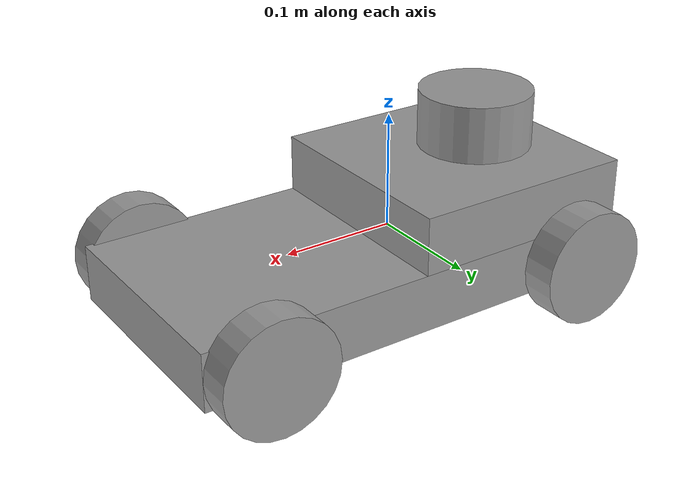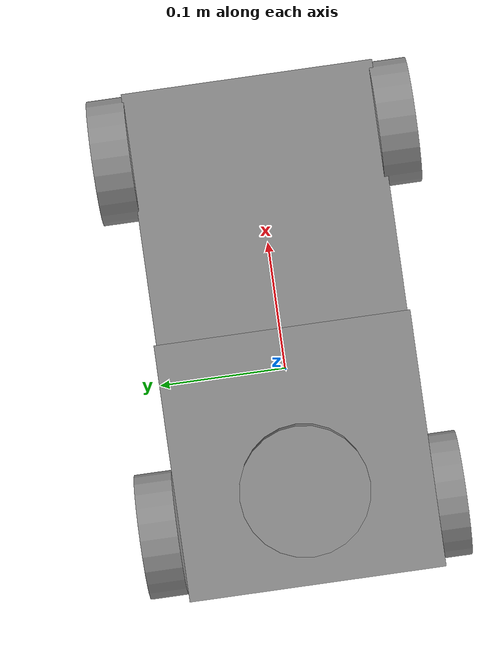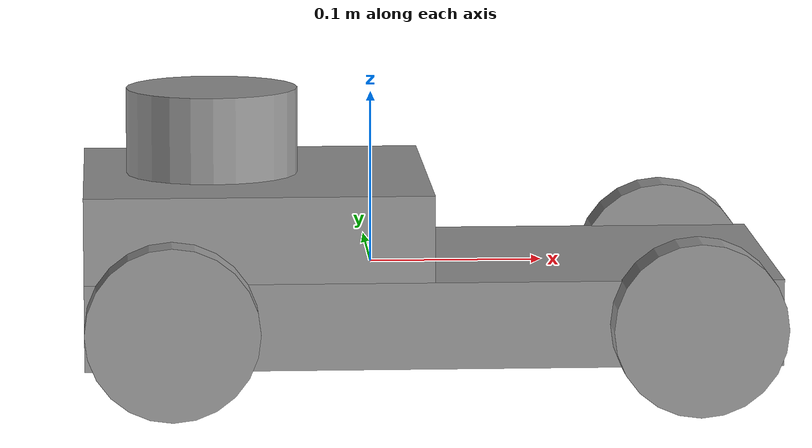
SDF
<?xml version='1.0'?>
<sdf version='1.6'>
  <model name='rover'>
    <link name='link_5'>
      <pose frame=''>0.032143 -0.001488 -0.02143 0 -0 0</pose>
      <inertial>
        <mass>1</mass>
        <inertia>
          <ixx>0.166667</ixx>
          <ixy>0</ixy>
          <ixz>0</ixz>
          <iyy>0.166667</iyy>
          <iyz>0</iyz>
          <izz>0.166667</izz>
        </inertia>
        <pose frame=''>0 0 0 0 -0 0</pose>
      </inertial>
      <gravity>1</gravity>
      <self_collide>0</self_collide>
      <kinematic>0</kinematic>
      <visual name='visual'>
        <pose frame=''>0 0 0 0 -0 0</pose>
        <geometry>
          <box>
            <size>0.4 0.2 0.05</size>
          </box>
        </geometry>
        <material>
          <lighting>1</lighting>
          <script>
            <uri>file://media/materials/scripts/gazebo.material</uri>
            <name>Gazebo/Grey</name>
          </script>
          <ambient>0.3 0.3 0.3 1</ambient>
          <diffuse>0.7 0.7 0.7 1</diffuse>
          <specular>0.01 0.01 0.01 1</specular>
          <emissive>0 0 0 1</emissive>
          <shader type='vertex'>
            <normal_map>__default__</normal_map>
          </shader>
        </material>
        <transparency>0</transparency>
        <cast_shadows>1</cast_shadows>
      </visual>
      <collision name='collision'>
        <laser_retro>0</laser_retro>
        <max_contacts>10</max_contacts>
        <pose frame=''>0 0 0 0 -0 0</pose>
        <geometry>
          <box>
            <size>0.4 0.2 0.05</size>
          </box>
        </geometry>
        <surface>
          <friction>
            <ode>
              <mu>1</mu>
              <mu2>1</mu2>
              <fdir1>0 0 0</fdir1>
              <slip1>0</slip1>
              <slip2>0</slip2>
            </ode>
            <torsional>
              <coefficient>1</coefficient>
              <patch_radius>0</patch_radius>
              <surface_radius>0</surface_radius>
              <use_patch_radius>1</use_patch_radius>
              <ode>
                <slip>0</slip>
              </ode>
            </torsional>
          </friction>
          <bounce>
            <restitution_coefficient>0</restitution_coefficient>
            <threshold>1e+06</threshold>
          </bounce>
          <contact>
            <collide_without_contact>0</collide_without_contact>
            <collide_without_contact_bitmask>1</collide_without_contact_bitmask>
            <collide_bitmask>1</collide_bitmask>
            <ode>
              <soft_cfm>0</soft_cfm>
              <soft_erp>0.2</soft_erp>
              <kp>1e+13</kp>
              <kd>1</kd>
              <max_vel>0.01</max_vel>
              <min_depth>0</min_depth>
            </ode>
            <bullet>
              <split_impulse>1</split_impulse>
              <split_impulse_penetration_threshold>-0.01</split_impulse_penetration_threshold>
              <soft_cfm>0</soft_cfm>
              <soft_erp>0.2</soft_erp>
              <kp>1e+13</kp>
              <kd>1</kd>
            </bullet>
          </contact>
        </surface>
      </collision>
    </link>
    <link name='link_6'>
      <pose frame=''>-0.067857 -0.001488 0.02857 0 -0 0</pose>
      <inertial>
        <mass>1</mass>
        <inertia>
          <ixx>0.166667</ixx>
          <ixy>0</ixy>
          <ixz>0</ixz>
          <iyy>0.166667</iyy>
          <iyz>0</iyz>
          <izz>0.166667</izz>
        </inertia>
        <pose frame=''>0 0 0 0 -0 0</pose>
      </inertial>
      <gravity>1</gravity>
      <self_collide>0</self_collide>
      <kinematic>0</kinematic>
      <visual name='visual'>
        <pose frame=''>0 0 0 0 -0 0</pose>
        <geometry>
          <box>
            <size>0.2 0.2 0.05</size>
          </box>
        </geometry>
        <material>
          <lighting>1</lighting>
          <script>
            <uri>file://media/materials/scripts/gazebo.material</uri>
            <name>Gazebo/Grey</name>
          </script>
          <ambient>0.3 0.3 0.3 1</ambient>
          <diffuse>0.7 0.7 0.7 1</diffuse>
          <specular>0.01 0.01 0.01 1</specular>
          <emissive>0 0 0 1</emissive>
          <shader type='vertex'>
            <normal_map>__default__</normal_map>
          </shader>
        </material>
        <transparency>0</transparency>
        <cast_shadows>1</cast_shadows>
      </visual>
      <collision name='collision'>
        <laser_retro>0</laser_retro>
        <max_contacts>10</max_contacts>
        <pose frame=''>0 0 0 0 -0 0</pose>
        <geometry>
          <box>
            <size>0.2 0.2 0.05</size>
          </box>
        </geometry>
        <surface>
          <friction>
            <ode>
              <mu>1</mu>
              <mu2>1</mu2>
              <fdir1>0 0 0</fdir1>
              <slip1>0</slip1>
              <slip2>0</slip2>
            </ode>
            <torsional>
              <coefficient>1</coefficient>
              <patch_radius>0</patch_radius>
              <surface_radius>0</surface_radius>
              <use_patch_radius>1</use_patch_radius>
              <ode>
                <slip>0</slip>
              </ode>
            </torsional>
          </friction>
          <bounce>
            <restitution_coefficient>0</restitution_coefficient>
            <threshold>1e+06</threshold>
          </bounce>
          <contact>
            <collide_without_contact>0</collide_without_contact>
            <collide_without_contact_bitmask>1</collide_without_contact_bitmask>
            <collide_bitmask>1</collide_bitmask>
            <ode>
              <soft_cfm>0</soft_cfm>
              <soft_erp>0.2</soft_erp>
              <kp>1e+13</kp>
              <kd>1</kd>
              <max_vel>0.01</max_vel>
              <min_depth>0</min_depth>
            </ode>
            <bullet>
              <split_impulse>1</split_impulse>
              <split_impulse_penetration_threshold>-0.01</split_impulse_penetration_threshold>
              <soft_cfm>0</soft_cfm>
              <soft_erp>0.2</soft_erp>
              <kp>1e+13</kp>
              <kd>1</kd>
            </bullet>
          </contact>
        </surface>
      </collision>
    </link>
    <link name='link_7'>
      <pose frame=''>-0.117857 -0.111182 -0.021437 1.5707 -0 0</pose>
      <inertial>
        <mass>1</mass>
        <inertia>
          <ixx>0.145833</ixx>
          <ixy>0</ixy>
          <ixz>0</ixz>
          <iyy>0.145833</iyy>
          <iyz>0</iyz>
          <izz>0.125</izz>
        </inertia>
        <pose frame=''>0 0 0 0 -0 0</pose>
      </inertial>
      <gravity>1</gravity>
      <self_collide>0</self_collide>
      <kinematic>0</kinematic>
      <visual name='visual'>
        <pose frame=''>0 0 0 0 -0 0</pose>
        <geometry>
          <cylinder>
            <radius>0.05</radius>
            <length>0.03</length>
          </cylinder>
        </geometry>
        <material>
          <lighting>1</lighting>
          <script>
            <uri>file://media/materials/scripts/gazebo.material</uri>
            <name>Gazebo/Grey</name>
          </script>
          <ambient>0.3 0.3 0.3 1</ambient>
          <diffuse>0.7 0.7 0.7 1</diffuse>
          <specular>0.01 0.01 0.01 1</specular>
          <emissive>0 0 0 1</emissive>
          <shader type='vertex'>
            <normal_map>__default__</normal_map>
          </shader>
        </material>
        <transparency>0</transparency>
        <cast_shadows>1</cast_shadows>
      </visual>
      <collision name='collision'>
        <laser_retro>0</laser_retro>
        <max_contacts>10</max_contacts>
        <pose frame=''>0 0 0 0 -0 0</pose>
        <geometry>
          <cylinder>
            <radius>0.05</radius>
            <length>0.03</length>
          </cylinder>
        </geometry>
        <surface>
          <friction>
            <ode>
              <mu>1</mu>
              <mu2>1</mu2>
              <fdir1>0 0 0</fdir1>
              <slip1>0</slip1>
              <slip2>0</slip2>
            </ode>
            <torsional>
              <coefficient>1</coefficient>
              <patch_radius>0</patch_radius>
              <surface_radius>0</surface_radius>
              <use_patch_radius>1</use_patch_radius>
              <ode>
                <slip>0</slip>
              </ode>
            </torsional>
          </friction>
          <bounce>
            <restitution_coefficient>0</restitution_coefficient>
            <threshold>1e+06</threshold>
          </bounce>
          <contact>
            <collide_without_contact>0</collide_without_contact>
            <collide_without_contact_bitmask>1</collide_without_contact_bitmask>
            <collide_bitmask>1</collide_bitmask>
            <ode>
              <soft_cfm>0</soft_cfm>
              <soft_erp>0.2</soft_erp>
              <kp>1e+13</kp>
              <kd>1</kd>
              <max_vel>0.01</max_vel>
              <min_depth>0</min_depth>
            </ode>
            <bullet>
              <split_impulse>1</split_impulse>
              <split_impulse_penetration_threshold>-0.01</split_impulse_penetration_threshold>
              <soft_cfm>0</soft_cfm>
              <soft_erp>0.2</soft_erp>
              <kp>1e+13</kp>
              <kd>1</kd>
            </bullet>
          </contact>
        </surface>
      </collision>
    </link>
    <link name='link_7_clone'>
      <pose frame=''>-0.117857 0.116593 -0.021418 1.5707 -0 0</pose>
      <inertial>
        <mass>1</mass>
        <inertia>
          <ixx>0.145833</ixx>
          <ixy>0</ixy>
          <ixz>0</ixz>
          <iyy>0.145833</iyy>
          <iyz>0</iyz>
          <izz>0.125</izz>
        </inertia>
        <pose frame=''>0 0 0 0 -0 0</pose>
      </inertial>
      <self_collide>0</self_collide>
      <kinematic>0</kinematic>
      <visual name='visual'>
        <pose frame=''>0 0 0 0 -0 0</pose>
        <geometry>
          <cylinder>
            <radius>0.05</radius>
            <length>0.03</length>
          </cylinder>
        </geometry>
        <material>
          <lighting>1</lighting>
          <script>
            <uri>file://media/materials/scripts/gazebo.material</uri>
            <name>Gazebo/Grey</name>
          </script>
          <ambient>0.3 0.3 0.3 1</ambient>
          <diffuse>0.7 0.7 0.7 1</diffuse>
          <specular>0.01 0.01 0.01 1</specular>
          <emissive>0 0 0 1</emissive>
          <shader type='vertex'>
            <normal_map>__default__</normal_map>
          </shader>
        </material>
        <transparency>0</transparency>
        <cast_shadows>1</cast_shadows>
      </visual>
      <collision name='collision'>
        <laser_retro>0</laser_retro>
        <max_contacts>10</max_contacts>
        <pose frame=''>0 0 0 0 -0 0</pose>
        <geometry>
          <cylinder>
            <radius>0.05</radius>
            <length>0.03</length>
          </cylinder>
        </geometry>
        <surface>
          <friction>
            <ode>
              <mu>1</mu>
              <mu2>1</mu2>
              <fdir1>0 0 0</fdir1>
              <slip1>0</slip1>
              <slip2>0</slip2>
            </ode>
            <torsional>
              <coefficient>1</coefficient>
              <patch_radius>0</patch_radius>
              <surface_radius>0</surface_radius>
              <use_patch_radius>1</use_patch_radius>
              <ode>
                <slip>0</slip>
              </ode>
            </torsional>
          </friction>
          <bounce>
            <restitution_coefficient>0</restitution_coefficient>
            <threshold>1e+06</threshold>
          </bounce>
          <contact>
            <collide_without_contact>0</collide_without_contact>
            <collide_without_contact_bitmask>1</collide_without_contact_bitmask>
            <collide_bitmask>1</collide_bitmask>
            <ode>
              <soft_cfm>0</soft_cfm>
              <soft_erp>0.2</soft_erp>
              <kp>1e+13</kp>
              <kd>1</kd>
              <max_vel>0.01</max_vel>
              <min_depth>0</min_depth>
            </ode>
            <bullet>
              <split_impulse>1</split_impulse>
              <split_impulse_penetration_threshold>-0.01</split_impulse_penetration_threshold>
              <soft_cfm>0</soft_cfm>
              <soft_erp>0.2</soft_erp>
              <kp>1e+13</kp>
              <kd>1</kd>
            </bullet>
          </contact>
        </surface>
      </collision>
    </link>
    <link name='link_7_clone_0'>
      <pose frame=''>0.182143 -0.113294 -0.021442 1.5707 -0 0</pose>
      <inertial>
        <mass>1</mass>
        <inertia>
          <ixx>0.145833</ixx>
          <ixy>0</ixy>
          <ixz>0</ixz>
          <iyy>0.145833</iyy>
          <iyz>0</iyz>
          <izz>0.125</izz>
        </inertia>
        <pose frame=''>0 0 0 0 -0 0</pose>
      </inertial>
      <self_collide>0</self_collide>
      <kinematic>0</kinematic>
      <visual name='visual'>
        <pose frame=''>0 0 0 0 -0 0</pose>
        <geometry>
          <cylinder>
            <radius>0.05</radius>
            <length>0.03</length>
          </cylinder>
        </geometry>
        <material>
          <lighting>1</lighting>
          <script>
            <uri>file://media/materials/scripts/gazebo.material</uri>
            <name>Gazebo/Grey</name>
          </script>
          <ambient>0.3 0.3 0.3 1</ambient>
          <diffuse>0.7 0.7 0.7 1</diffuse>
          <specular>0.01 0.01 0.01 1</specular>
          <emissive>0 0 0 1</emissive>
          <shader type='vertex'>
            <normal_map>__default__</normal_map>
          </shader>
        </material>
        <transparency>0</transparency>
        <cast_shadows>1</cast_shadows>
      </visual>
      <collision name='collision'>
        <laser_retro>0</laser_retro>
        <max_contacts>10</max_contacts>
        <pose frame=''>0 0 0 0 -0 0</pose>
        <geometry>
          <cylinder>
            <radius>0.05</radius>
            <length>0.03</length>
          </cylinder>
        </geometry>
        <surface>
          <friction>
            <ode>
              <mu>1</mu>
              <mu2>1</mu2>
              <fdir1>0 0 0</fdir1>
              <slip1>0</slip1>
              <slip2>0</slip2>
            </ode>
            <torsional>
              <coefficient>1</coefficient>
              <patch_radius>0</patch_radius>
              <surface_radius>0</surface_radius>
              <use_patch_radius>1</use_patch_radius>
              <ode>
                <slip>0</slip>
              </ode>
            </torsional>
          </friction>
          <bounce>
            <restitution_coefficient>0</restitution_coefficient>
            <threshold>1e+06</threshold>
          </bounce>
          <contact>
            <collide_without_contact>0</collide_without_contact>
            <collide_without_contact_bitmask>1</collide_without_contact_bitmask>
            <collide_bitmask>1</collide_bitmask>
            <ode>
              <soft_cfm>0</soft_cfm>
              <soft_erp>0.2</soft_erp>
              <kp>1e+13</kp>
              <kd>1</kd>
              <max_vel>0.01</max_vel>
              <min_depth>0</min_depth>
            </ode>
            <bullet>
              <split_impulse>1</split_impulse>
              <split_impulse_penetration_threshold>-0.01</split_impulse_penetration_threshold>
              <soft_cfm>0</soft_cfm>
              <soft_erp>0.2</soft_erp>
              <kp>1e+13</kp>
              <kd>1</kd>
            </bullet>
          </contact>
        </surface>
      </collision>
    </link>
    <link name='link_7_clone_1'>
      <pose frame=''>0.182143 0.112348 -0.021412 1.5707 -0 0</pose>
      <inertial>
        <mass>1</mass>
        <inertia>
          <ixx>0.145833</ixx>
          <ixy>0</ixy>
          <ixz>0</ixz>
          <iyy>0.145833</iyy>
          <iyz>0</iyz>
          <izz>0.125</izz>
        </inertia>
        <pose frame=''>0 0 0 0 -0 0</pose>
      </inertial>
      <self_collide>0</self_collide>
      <kinematic>0</kinematic>
      <visual name='visual'>
        <pose frame=''>0 0 0 0 -0 0</pose>
        <geometry>
          <cylinder>
            <radius>0.05</radius>
            <length>0.03</length>
          </cylinder>
        </geometry>
        <material>
          <lighting>1</lighting>
          <script>
            <uri>file://media/materials/scripts/gazebo.material</uri>
            <name>Gazebo/Grey</name>
          </script>
          <ambient>0.3 0.3 0.3 1</ambient>
          <diffuse>0.7 0.7 0.7 1</diffuse>
          <specular>0.01 0.01 0.01 1</specular>
          <emissive>0 0 0 1</emissive>
          <shader type='vertex'>
            <normal_map>__default__</normal_map>
          </shader>
        </material>
        <transparency>0</transparency>
        <cast_shadows>1</cast_shadows>
      </visual>
      <collision name='collision'>
        <laser_retro>0</laser_retro>
        <max_contacts>10</max_contacts>
        <pose frame=''>0 0 0 0 -0 0</pose>
        <geometry>
          <cylinder>
            <radius>0.05</radius>
            <length>0.03</length>
          </cylinder>
        </geometry>
        <surface>
          <friction>
            <ode>
              <mu>1</mu>
              <mu2>1</mu2>
              <fdir1>0 0 0</fdir1>
              <slip1>0</slip1>
              <slip2>0</slip2>
            </ode>
            <torsional>
              <coefficient>1</coefficient>
              <patch_radius>0</patch_radius>
              <surface_radius>0</surface_radius>
              <use_patch_radius>1</use_patch_radius>
              <ode>
                <slip>0</slip>
              </ode>
            </torsional>
          </friction>
          <bounce>
            <restitution_coefficient>0</restitution_coefficient>
            <threshold>1e+06</threshold>
          </bounce>
          <contact>
            <collide_without_contact>0</collide_without_contact>
            <collide_without_contact_bitmask>1</collide_without_contact_bitmask>
            <collide_bitmask>1</collide_bitmask>
            <ode>
              <soft_cfm>0</soft_cfm>
              <soft_erp>0.2</soft_erp>
              <kp>1e+13</kp>
              <kd>1</kd>
              <max_vel>0.01</max_vel>
              <min_depth>0</min_depth>
            </ode>
            <bullet>
              <split_impulse>1</split_impulse>
              <split_impulse_penetration_threshold>-0.01</split_impulse_penetration_threshold>
              <soft_cfm>0</soft_cfm>
              <soft_erp>0.2</soft_erp>
              <kp>1e+13</kp>
              <kd>1</kd>
            </bullet>
          </contact>
        </surface>
      </collision>
    </link>
    <link name='link_8'>
      <pose frame=''>-0.092857 -0.001488 0.07857 0 -0 0</pose>
      <inertial>
        <mass>1</mass>
        <inertia>
          <ixx>0.145833</ixx>
          <ixy>0</ixy>
          <ixz>0</ixz>
          <iyy>0.145833</iyy>
          <iyz>0</iyz>
          <izz>0.125</izz>
        </inertia>
        <pose frame=''>0 0 0 0 -0 0</pose>
      </inertial>
      <gravity>1</gravity>
      <self_collide>0</self_collide>
      <kinematic>0</kinematic>
      <visual name='visual'>
        <pose frame=''>0 0 0 0 -0 0</pose>
        <geometry>
          <cylinder>
            <radius>0.05</radius>
            <length>0.05</length>
          </cylinder>
        </geometry>
        <material>
          <lighting>1</lighting>
          <script>
            <uri>file://media/materials/scripts/gazebo.material</uri>
            <name>Gazebo/Grey</name>
          </script>
          <ambient>0.3 0.3 0.3 1</ambient>
          <diffuse>0.7 0.7 0.7 1</diffuse>
          <specular>0.01 0.01 0.01 1</specular>
          <emissive>0 0 0 1</emissive>
          <shader type='vertex'>
            <normal_map>__default__</normal_map>
          </shader>
        </material>
        <transparency>0</transparency>
        <cast_shadows>1</cast_shadows>
      </visual>
      <collision name='collision'>
        <laser_retro>0</laser_retro>
        <max_contacts>10</max_contacts>
        <pose frame=''>0 0 0 0 -0 0</pose>
        <geometry>
          <cylinder>
            <radius>0.05</radius>
            <length>0.05</length>
          </cylinder>
        </geometry>
        <surface>
          <friction>
            <ode>
              <mu>1</mu>
              <mu2>1</mu2>
              <fdir1>0 0 0</fdir1>
              <slip1>0</slip1>
              <slip2>0</slip2>
            </ode>
            <torsional>
              <coefficient>1</coefficient>
              <patch_radius>0</patch_radius>
              <surface_radius>0</surface_radius>
              <use_patch_radius>1</use_patch_radius>
              <ode>
                <slip>0</slip>
              </ode>
            </torsional>
          </friction>
          <bounce>
            <restitution_coefficient>0</restitution_coefficient>
            <threshold>1e+06</threshold>
          </bounce>
          <contact>
            <collide_without_contact>0</collide_without_contact>
            <collide_without_contact_bitmask>1</collide_without_contact_bitmask>
            <collide_bitmask>1</collide_bitmask>
            <ode>
              <soft_cfm>0</soft_cfm>
              <soft_erp>0.2</soft_erp>
              <kp>1e+13</kp>
              <kd>1</kd>
              <max_vel>0.01</max_vel>
              <min_depth>0</min_depth>
            </ode>
            <bullet>
              <split_impulse>1</split_impulse>
              <split_impulse_penetration_threshold>-0.01</split_impulse_penetration_threshold>
              <soft_cfm>0</soft_cfm>
              <soft_erp>0.2</soft_erp>
              <kp>1e+13</kp>
              <kd>1</kd>
            </bullet>
          </contact>
        </surface>
      </collision>
    </link>
    <joint name='link_5_JOINT_0' type='fixed'>
      <parent>link_5</parent>
      <child>link_6</child>
      <pose frame=''>0 0 0 0 -0 0</pose>
      <physics>
        <ode>
          <limit>
            <cfm>0</cfm>
            <erp>0.2</erp>
          </limit>
          <suspension>
            <cfm>0</cfm>
            <erp>0.2</erp>
          </suspension>
        </ode>
      </physics>
    </joint>
    <joint name='link_5_JOINT_4' type='revolute'>
      <parent>link_5</parent>
      <child>link_7</child>
      <pose frame=''>0 0 0 0 -0 0</pose>
      <axis>
        <xyz>0 0 1</xyz>
        <use_parent_model_frame>0</use_parent_model_frame>
        <limit>
          <lower>-1.79769e+308</lower>
          <upper>1.79769e+308</upper>
          <effort>-1</effort>
          <velocity>-1</velocity>
        </limit>
        <dynamics>
          <spring_reference>0</spring_reference>
          <spring_stiffness>0</spring_stiffness>
          <damping>0</damping>
        </dynamics>
      </axis>
      <physics>
        <ode>
          <limit>
            <cfm>0</cfm>
            <erp>0.2</erp>
          </limit>
          <suspension>
            <cfm>0</cfm>
            <erp>0.2</erp>
          </suspension>
        </ode>
      </physics>
    </joint>
    <joint name='link_5_JOINT_5' type='revolute'>
      <parent>link_5</parent>
      <child>link_7_clone</child>
      <pose frame=''>0 0 0 0 -0 0</pose>
      <axis>
        <xyz>-0 -0 -1</xyz>
        <use_parent_model_frame>0</use_parent_model_frame>
        <limit>
          <lower>-1.79769e+308</lower>
          <upper>1.79769e+308</upper>
          <effort>-1</effort>
          <velocity>-1</velocity>
        </limit>
        <dynamics>
          <spring_reference>0</spring_reference>
          <spring_stiffness>0</spring_stiffness>
          <damping>0</damping>
        </dynamics>
      </axis>
      <physics>
        <ode>
          <limit>
            <cfm>0</cfm>
            <erp>0.2</erp>
          </limit>
          <suspension>
            <cfm>0</cfm>
            <erp>0.2</erp>
          </suspension>
        </ode>
      </physics>
    </joint>
    <joint name='link_5_JOINT_6' type='revolute'>
      <parent>link_5</parent>
      <child>link_7_clone_0</child>
      <pose frame=''>0 0 0 0 -0 0</pose>
      <axis>
        <xyz>0 0 1</xyz>
        <use_parent_model_frame>0</use_parent_model_frame>
        <limit>
          <lower>-1.79769e+308</lower>
          <upper>1.79769e+308</upper>
          <effort>-1</effort>
          <velocity>-1</velocity>
        </limit>
        <dynamics>
          <spring_reference>0</spring_reference>
          <spring_stiffness>0</spring_stiffness>
          <damping>0</damping>
        </dynamics>
      </axis>
      <physics>
        <ode>
          <limit>
            <cfm>0</cfm>
            <erp>0.2</erp>
          </limit>
          <suspension>
            <cfm>0</cfm>
            <erp>0.2</erp>
          </suspension>
        </ode>
      </physics>
    </joint>
    <joint name='link_5_JOINT_7' type='revolute'>
      <parent>link_5</parent>
      <child>link_7_clone_1</child>
      <pose frame=''>0 0 0 0 -0 0</pose>
      <axis>
        <xyz>-0 -0 -1</xyz>
        <use_parent_model_frame>0</use_parent_model_frame>
        <limit>
          <lower>-1.79769e+308</lower>
          <upper>1.79769e+308</upper>
          <effort>-1</effort>
          <velocity>-1</velocity>
        </limit>
        <dynamics>
          <spring_reference>0</spring_reference>
          <spring_stiffness>0</spring_stiffness>
          <damping>0</damping>
        </dynamics>
      </axis>
      <physics>
        <ode>
          <limit>
            <cfm>0</cfm>
            <erp>0.2</erp>
          </limit>
          <suspension>
            <cfm>0</cfm>
            <erp>0.2</erp>
          </suspension>
        </ode>
      </physics>
    </joint>
    <joint name='link_6_JOINT_1' type='fixed'>
      <parent>link_6</parent>
      <child>link_8</child>
      <pose frame=''>0 0 0 0 -0 0</pose>
      <physics>
        <ode>
          <limit>
            <cfm>0</cfm>
            <erp>0.2</erp>
          </limit>
          <suspension>
            <cfm>0</cfm>
            <erp>0.2</erp>
          </suspension>
        </ode>
      </physics>
    </joint>
    <static>0</static>
    <allow_auto_disable>1</allow_auto_disable>
  </model>
</sdf>
